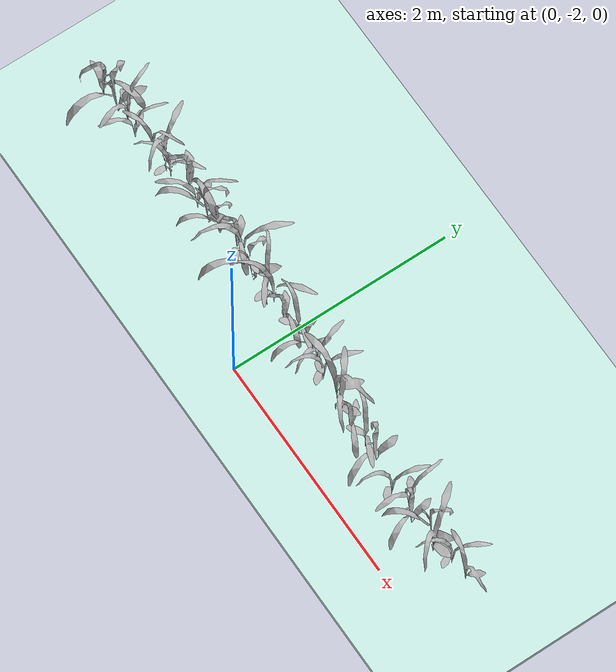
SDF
<sdf version="1.9">
 <world name="feild">
  <model name="ground">
   <static>true</static>
   <pose>0.00 3.25 -0.025 0 0 0</pose>
   <link name="link">
    <collision name="collision">
     <geometry><box><size>9.00 17.30 0.05</size></box></geometry>
     <surface><friction><ode><mu>1.0</mu><mu2>1.0</mu2></ode></friction></surface>
    </collision>
    <visual name="visual">
     <geometry><box><size>9.00 17.30 0.05</size></box></geometry>
     <material>
      <diffuse>0.81 0.95 0.92 1</diffuse>
      <pbr>
       <metal>
        <albedo_map>model://materials/textures/grass_color.jpg</albedo_map>
        <normal_map>model://materials/textures/grass_normal.jpg</normal_map>
       </metal>
      </pbr>
     </material>
    </visual>
   </link>
  </model>
  <model name="row_02">
   <static>true</static>
   <pose>0 -1.500 0 0 0 0</pose>
   <link name="link">
    <visual name="p000">
     <pose>-2.500 -0.068 0.049 0 0 1.13</pose>
     <geometry>
      <mesh><uri>model://maize_01/meshes/maize_01.dae</uri><scale>0.6752 0.6752 0.6752</scale></mesh>
     </geometry>
    </visual>
    <collision name="p000_c">
     <pose>-2.500 -0.068 0.247 0 0 0</pose>
     <geometry><box><size>0.020 0.020 0.395</size></box></geometry>
    </collision>
    <visual name="p001">
     <pose>-2.327 -0.044 0.058 0 0 5.54</pose>
     <geometry>
      <mesh><uri>model://maize_01/meshes/maize_01.dae</uri><scale>0.7953 0.7953 0.7953</scale></mesh>
     </geometry>
    </visual>
    <collision name="p001_c">
     <pose>-2.327 -0.044 0.291 0 0 0</pose>
     <geometry><box><size>0.023 0.023 0.466</size></box></geometry>
    </collision>
    <visual name="p002">
     <pose>-2.215 -0.024 0.046 0 0 0.92</pose>
     <geometry>
      <mesh><uri>model://maize_02/meshes/maize_02.dae</uri><scale>0.6334 0.6334 0.6334</scale></mesh>
     </geometry>
    </visual>
    <collision name="p002_c">
     <pose>-2.215 -0.024 0.232 0 0 0</pose>
     <geometry><box><size>0.019 0.019 0.371</size></box></geometry>
    </collision>
    <visual name="p003">
     <pose>-2.062 -0.055 0.041 0 0 0.28</pose>
     <geometry>
      <mesh><uri>model://maize_02/meshes/maize_02.dae</uri><scale>0.5573 0.5573 0.5573</scale></mesh>
     </geometry>
    </visual>
    <collision name="p003_c">
     <pose>-2.062 -0.055 0.204 0 0 0</pose>
     <geometry><box><size>0.016 0.016 0.326</size></box></geometry>
    </collision>
    <visual name="p004">
     <pose>-1.878 -0.001 0.042 0 0 5.67</pose>
     <geometry>
      <mesh><uri>model://maize_02/meshes/maize_02.dae</uri><scale>0.5726 0.5726 0.5726</scale></mesh>
     </geometry>
    </visual>
    <collision name="p004_c">
     <pose>-1.878 -0.001 0.210 0 0 0</pose>
     <geometry><box><size>0.017 0.017 0.335</size></box></geometry>
    </collision>
    <visual name="p005">
     <pose>-1.755 0.023 0.049 0 0 4.31</pose>
     <geometry>
      <mesh><uri>model://maize_02/meshes/maize_02.dae</uri><scale>0.6710 0.6710 0.6710</scale></mesh>
     </geometry>
    </visual>
    <collision name="p005_c">
     <pose>-1.755 0.023 0.246 0 0 0</pose>
     <geometry><box><size>0.020 0.020 0.393</size></box></geometry>
    </collision>
    <visual name="p006">
     <pose>-1.619 -0.011 0.042 0 0 2.80</pose>
     <geometry>
      <mesh><uri>model://maize_02/meshes/maize_02.dae</uri><scale>0.5787 0.5787 0.5787</scale></mesh>
     </geometry>
    </visual>
    <collision name="p006_c">
     <pose>-1.619 -0.011 0.212 0 0 0</pose>
     <geometry><box><size>0.017 0.017 0.339</size></box></geometry>
    </collision>
    <visual name="p007">
     <pose>-1.434 0.039 0.053 0 0 0.72</pose>
     <geometry>
      <mesh><uri>model://maize_01/meshes/maize_01.dae</uri><scale>0.7204 0.7204 0.7204</scale></mesh>
     </geometry>
    </visual>
    <collision name="p007_c">
     <pose>-1.434 0.039 0.264 0 0 0</pose>
     <geometry><box><size>0.021 0.021 0.422</size></box></geometry>
    </collision>
    <visual name="p008">
     <pose>-1.280 0.017 0.046 0 0 6.21</pose>
     <geometry>
      <mesh><uri>model://maize_02/meshes/maize_02.dae</uri><scale>0.6300 0.6300 0.6300</scale></mesh>
     </geometry>
    </visual>
    <collision name="p008_c">
     <pose>-1.280 0.017 0.231 0 0 0</pose>
     <geometry><box><size>0.018 0.018 0.369</size></box></geometry>
    </collision>
    <visual name="p009">
     <pose>-1.129 0.020 0.050 0 0 4.70</pose>
     <geometry>
      <mesh><uri>model://maize_01/meshes/maize_01.dae</uri><scale>0.6882 0.6882 0.6882</scale></mesh>
     </geometry>
    </visual>
    <collision name="p009_c">
     <pose>-1.129 0.020 0.252 0 0 0</pose>
     <geometry><box><size>0.020 0.020 0.403</size></box></geometry>
    </collision>
    <visual name="p010">
     <pose>-1.008 0.039 0.040 0 0 5.04</pose>
     <geometry>
      <mesh><uri>model://maize_01/meshes/maize_01.dae</uri><scale>0.5495 0.5495 0.5495</scale></mesh>
     </geometry>
    </visual>
    <collision name="p010_c">
     <pose>-1.008 0.039 0.201 0 0 0</pose>
     <geometry><box><size>0.016 0.016 0.322</size></box></geometry>
    </collision>
    <visual name="p011">
     <pose>-0.825 0.081 0.043 0 0 0.42</pose>
     <geometry>
      <mesh><uri>model://maize_01/meshes/maize_01.dae</uri><scale>0.5817 0.5817 0.5817</scale></mesh>
     </geometry>
    </visual>
    <collision name="p011_c">
     <pose>-0.825 0.081 0.213 0 0 0</pose>
     <geometry><box><size>0.017 0.017 0.341</size></box></geometry>
    </collision>
    <visual name="p012">
     <pose>-0.713 0.057 0.058 0 0 3.35</pose>
     <geometry>
      <mesh><uri>model://maize_02/meshes/maize_02.dae</uri><scale>0.7947 0.7947 0.7947</scale></mesh>
     </geometry>
    </visual>
    <collision name="p012_c">
     <pose>-0.713 0.057 0.291 0 0 0</pose>
     <geometry><box><size>0.023 0.023 0.465</size></box></geometry>
    </collision>
    <visual name="p013">
     <pose>-0.524 0.036 0.054 0 0 5.22</pose>
     <geometry>
      <mesh><uri>model://maize_01/meshes/maize_01.dae</uri><scale>0.7334 0.7334 0.7334</scale></mesh>
     </geometry>
    </visual>
    <collision name="p013_c">
     <pose>-0.524 0.036 0.268 0 0 0</pose>
     <geometry><box><size>0.021 0.021 0.429</size></box></geometry>
    </collision>
    <visual name="p014">
     <pose>-0.394 0.076 0.046 0 0 1.53</pose>
     <geometry>
      <mesh><uri>model://maize_02/meshes/maize_02.dae</uri><scale>0.6281 0.6281 0.6281</scale></mesh>
     </geometry>
    </visual>
    <collision name="p014_c">
     <pose>-0.394 0.076 0.230 0 0 0</pose>
     <geometry><box><size>0.018 0.018 0.368</size></box></geometry>
    </collision>
    <visual name="p015">
     <pose>-0.273 0.061 0.051 0 0 2.80</pose>
     <geometry>
      <mesh><uri>model://maize_02/meshes/maize_02.dae</uri><scale>0.6930 0.6930 0.6930</scale></mesh>
     </geometry>
    </visual>
    <collision name="p015_c">
     <pose>-0.273 0.061 0.254 0 0 0</pose>
     <geometry><box><size>0.020 0.020 0.406</size></box></geometry>
    </collision>
    <visual name="p016">
     <pose>-0.097 0.031 0.041 0 0 0.56</pose>
     <geometry>
      <mesh><uri>model://maize_01/meshes/maize_01.dae</uri><scale>0.5618 0.5618 0.5618</scale></mesh>
     </geometry>
    </visual>
    <collision name="p016_c">
     <pose>-0.097 0.031 0.206 0 0 0</pose>
     <geometry><box><size>0.016 0.016 0.329</size></box></geometry>
    </collision>
    <visual name="p017">
     <pose>0.074 0.057 0.045 0 0 1.93</pose>
     <geometry>
      <mesh><uri>model://maize_02/meshes/maize_02.dae</uri><scale>0.6184 0.6184 0.6184</scale></mesh>
     </geometry>
    </visual>
    <collision name="p017_c">
     <pose>0.074 0.057 0.226 0 0 0</pose>
     <geometry><box><size>0.018 0.018 0.362</size></box></geometry>
    </collision>
    <visual name="p018">
     <pose>0.224 0.056 0.041 0 0 5.44</pose>
     <geometry>
      <mesh><uri>model://maize_01/meshes/maize_01.dae</uri><scale>0.5638 0.5638 0.5638</scale></mesh>
     </geometry>
    </visual>
    <collision name="p018_c">
     <pose>0.224 0.056 0.206 0 0 0</pose>
     <geometry><box><size>0.017 0.017 0.330</size></box></geometry>
    </collision>
    <visual name="p019">
     <pose>0.364 0.040 0.043 0 0 4.02</pose>
     <geometry>
      <mesh><uri>model://maize_02/meshes/maize_02.dae</uri><scale>0.5896 0.5896 0.5896</scale></mesh>
     </geometry>
    </visual>
    <collision name="p019_c">
     <pose>0.364 0.040 0.216 0 0 0</pose>
     <geometry><box><size>0.017 0.017 0.345</size></box></geometry>
    </collision>
    <visual name="p020">
     <pose>0.473 0.017 0.044 0 0 3.39</pose>
     <geometry>
      <mesh><uri>model://maize_02/meshes/maize_02.dae</uri><scale>0.6060 0.6060 0.6060</scale></mesh>
     </geometry>
    </visual>
    <collision name="p020_c">
     <pose>0.473 0.017 0.222 0 0 0</pose>
     <geometry><box><size>0.018 0.018 0.355</size></box></geometry>
    </collision>
    <visual name="p021">
     <pose>0.666 0.015 0.058 0 0 5.39</pose>
     <geometry>
      <mesh><uri>model://maize_02/meshes/maize_02.dae</uri><scale>0.7913 0.7913 0.7913</scale></mesh>
     </geometry>
    </visual>
    <collision name="p021_c">
     <pose>0.666 0.015 0.290 0 0 0</pose>
     <geometry><box><size>0.023 0.023 0.463</size></box></geometry>
    </collision>
    <visual name="p022">
     <pose>0.797 -0.038 0.053 0 0 4.67</pose>
     <geometry>
      <mesh><uri>model://maize_02/meshes/maize_02.dae</uri><scale>0.7201 0.7201 0.7201</scale></mesh>
     </geometry>
    </visual>
    <collision name="p022_c">
     <pose>0.797 -0.038 0.264 0 0 0</pose>
     <geometry><box><size>0.021 0.021 0.422</size></box></geometry>
    </collision>
    <visual name="p023">
     <pose>0.932 -0.045 0.040 0 0 0.33</pose>
     <geometry>
      <mesh><uri>model://maize_01/meshes/maize_01.dae</uri><scale>0.5467 0.5467 0.5467</scale></mesh>
     </geometry>
    </visual>
    <collision name="p023_c">
     <pose>0.932 -0.045 0.200 0 0 0</pose>
     <geometry><box><size>0.016 0.016 0.320</size></box></geometry>
    </collision>
    <visual name="p024">
     <pose>1.129 -0.034 0.048 0 0 1.74</pose>
     <geometry>
      <mesh><uri>model://maize_02/meshes/maize_02.dae</uri><scale>0.6499 0.6499 0.6499</scale></mesh>
     </geometry>
    </visual>
    <collision name="p024_c">
     <pose>1.129 -0.034 0.238 0 0 0</pose>
     <geometry><box><size>0.019 0.019 0.381</size></box></geometry>
    </collision>
    <visual name="p025">
     <pose>1.256 -0.023 0.046 0 0 5.88</pose>
     <geometry>
      <mesh><uri>model://maize_01/meshes/maize_01.dae</uri><scale>0.6336 0.6336 0.6336</scale></mesh>
     </geometry>
    </visual>
    <collision name="p025_c">
     <pose>1.256 -0.023 0.232 0 0 0</pose>
     <geometry><box><size>0.019 0.019 0.371</size></box></geometry>
    </collision>
    <visual name="p027">
     <pose>1.552 -0.080 0.043 0 0 3.44</pose>
     <geometry>
      <mesh><uri>model://maize_02/meshes/maize_02.dae</uri><scale>0.5870 0.5870 0.5870</scale></mesh>
     </geometry>
    </visual>
    <collision name="p027_c">
     <pose>1.552 -0.080 0.215 0 0 0</pose>
     <geometry><box><size>0.017 0.017 0.344</size></box></geometry>
    </collision>
    <visual name="p028">
     <pose>1.723 -0.033 0.046 0 0 0.63</pose>
     <geometry>
      <mesh><uri>model://maize_02/meshes/maize_02.dae</uri><scale>0.6262 0.6262 0.6262</scale></mesh>
     </geometry>
    </visual>
    <collision name="p028_c">
     <pose>1.723 -0.033 0.229 0 0 0</pose>
     <geometry><box><size>0.018 0.018 0.367</size></box></geometry>
    </collision>
    <visual name="p029">
     <pose>1.832 -0.087 0.043 0 0 5.97</pose>
     <geometry>
      <mesh><uri>model://maize_01/meshes/maize_01.dae</uri><scale>0.5888 0.5888 0.5888</scale></mesh>
     </geometry>
    </visual>
    <collision name="p029_c">
     <pose>1.832 -0.087 0.215 0 0 0</pose>
     <geometry><box><size>0.017 0.017 0.345</size></box></geometry>
    </collision>
    <visual name="p030">
     <pose>2.027 -0.030 0.047 0 0 4.71</pose>
     <geometry>
      <mesh><uri>model://maize_01/meshes/maize_01.dae</uri><scale>0.6463 0.6463 0.6463</scale></mesh>
     </geometry>
    </visual>
    <collision name="p030_c">
     <pose>2.027 -0.030 0.236 0 0 0</pose>
     <geometry><box><size>0.019 0.019 0.378</size></box></geometry>
    </collision>
    <visual name="p031">
     <pose>2.122 -0.085 0.056 0 0 4.42</pose>
     <geometry>
      <mesh><uri>model://maize_02/meshes/maize_02.dae</uri><scale>0.7611 0.7611 0.7611</scale></mesh>
     </geometry>
    </visual>
    <collision name="p031_c">
     <pose>2.122 -0.085 0.279 0 0 0</pose>
     <geometry><box><size>0.022 0.022 0.446</size></box></geometry>
    </collision>
    <visual name="p032">
     <pose>2.273 -0.018 0.042 0 0 3.20</pose>
     <geometry>
      <mesh><uri>model://maize_02/meshes/maize_02.dae</uri><scale>0.5697 0.5697 0.5697</scale></mesh>
     </geometry>
    </visual>
    <collision name="p032_c">
     <pose>2.273 -0.018 0.208 0 0 0</pose>
     <geometry><box><size>0.017 0.017 0.334</size></box></geometry>
    </collision>
    <visual name="p033">
     <pose>2.448 -0.011 0.042 0 0 5.14</pose>
     <geometry>
      <mesh><uri>model://maize_02/meshes/maize_02.dae</uri><scale>0.5697 0.5697 0.5697</scale></mesh>
     </geometry>
    </visual>
    <collision name="p033_c">
     <pose>2.448 -0.011 0.208 0 0 0</pose>
     <geometry><box><size>0.017 0.017 0.334</size></box></geometry>
    </collision>
   </link>
  </model>
 </world>
</sdf>
